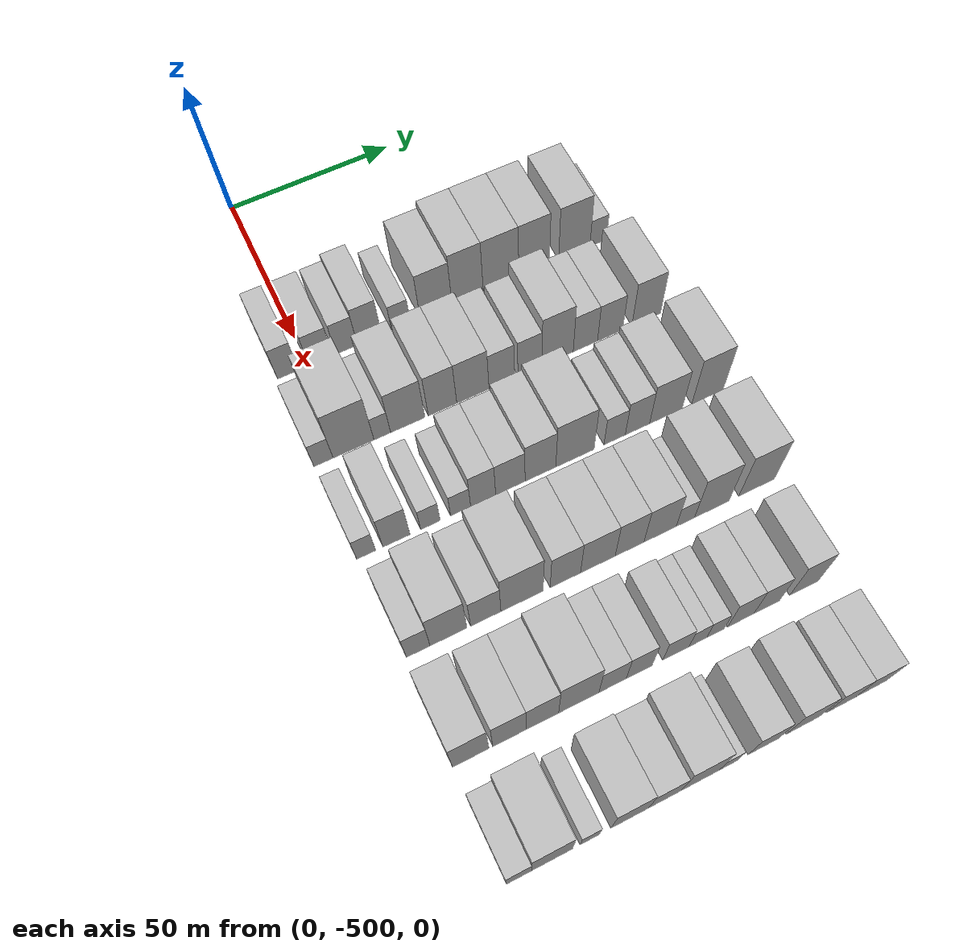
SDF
<sdf version="1.6">
 <world name="default">
  <model name="building_1">
   <static>1</static>
   <pose>50.0000 -505.8963 0 0.000000 0.000000 0.000000</pose>
   <link name="link">
    <pose>0 0 7.50 0 0 0</pose>
    <collision name="collision"><geometry><box><size>20.0000 6.2074 15.0000</size></box></geometry></collision>
    <visual name="visual">
     <cast_shadows>0</cast_shadows>
     <geometry><box><size>20.0000 6.2074 15.0000</size></box></geometry>
     <material>
      <script>
       <uri>model://HANNAS_wall/materials/scripts</uri>
       <uri>model://HANNAS_wall/materials/textures</uri>
       <name>vrc/HANNAS_wall</name>
      </script>
     </material>
    </visual>
   </link>
  </model>
  <model name="building_2">
   <static>1</static>
   <pose>50.0000 -496.2147 0 0.000000 0.000000 0.000000</pose>
   <link name="link">
    <pose>0 0 7.50 0 0 0</pose>
    <collision name="collision"><geometry><box><size>20.0000 7.1558 15.0000</size></box></geometry></collision>
    <visual name="visual">
     <cast_shadows>0</cast_shadows>
     <geometry><box><size>20.0000 7.1558 15.0000</size></box></geometry>
     <material>
      <script>
       <uri>model://HANNAS_wall/materials/scripts</uri>
       <uri>model://HANNAS_wall/materials/textures</uri>
       <name>vrc/HANNAS_wall</name>
      </script>
     </material>
    </visual>
   </link>
  </model>
  <model name="building_3">
   <static>1</static>
   <pose>50.0000 -488.3676 0 0.000000 0.000000 0.000000</pose>
   <link name="link">
    <pose>0 0 7.50 0 0 0</pose>
    <collision name="collision"><geometry><box><size>20.0000 6.5385 15.0000</size></box></geometry></collision>
    <visual name="visual">
     <cast_shadows>0</cast_shadows>
     <geometry><box><size>20.0000 6.5385 15.0000</size></box></geometry>
     <material>
      <script>
       <uri>model://HANNAS_wall/materials/scripts</uri>
       <uri>model://HANNAS_wall/materials/textures</uri>
       <name>vrc/HANNAS_wall</name>
      </script>
     </material>
    </visual>
   </link>
  </model>
  <model name="building_4">
   <static>1</static>
   <pose>50.0000 -481.3942 0 0.000000 0.000000 0.000000</pose>
   <link name="link">
    <pose>0 0 9.00 0 0 0</pose>
    <collision name="collision"><geometry><box><size>20.0000 7.4084 18.0000</size></box></geometry></collision>
    <visual name="visual">
     <cast_shadows>0</cast_shadows>
     <geometry><box><size>20.0000 7.4084 18.0000</size></box></geometry>
     <material>
      <script>
       <uri>model://HANNAS_wall/materials/scripts</uri>
       <uri>model://HANNAS_wall/materials/textures</uri>
       <name>vrc/HANNAS_wall</name>
      </script>
     </material>
    </visual>
   </link>
  </model>
  <model name="building_5">
   <static>1</static>
   <pose>50.0000 -471.7750 0 0.000000 0.000000 0.000000</pose>
   <link name="link">
    <pose>0 0 6.00 0 0 0</pose>
    <collision name="collision"><geometry><box><size>20.0000 5.8300 12.0000</size></box></geometry></collision>
    <visual name="visual">
     <cast_shadows>0</cast_shadows>
     <geometry><box><size>20.0000 5.8300 12.0000</size></box></geometry>
     <material>
      <script>
       <uri>model://HANNAS_wall/materials/scripts</uri>
       <uri>model://HANNAS_wall/materials/textures</uri>
       <name>vrc/HANNAS_wall</name>
      </script>
     </material>
    </visual>
   </link>
  </model>
  <model name="building_6">
   <static>1</static>
   <pose>50.0000 -460.8739 0 0.000000 0.000000 0.000000</pose>
   <link name="link">
    <pose>0 0 10.50 0 0 0</pose>
    <collision name="collision"><geometry><box><size>20.0000 9.9722 21.0000</size></box></geometry></collision>
    <visual name="visual">
     <cast_shadows>0</cast_shadows>
     <geometry><box><size>20.0000 9.9722 21.0000</size></box></geometry>
     <material>
      <script>
       <uri>model://HANNAS_wall/materials/scripts</uri>
       <uri>model://HANNAS_wall/materials/textures</uri>
       <name>vrc/HANNAS_wall</name>
      </script>
     </material>
    </visual>
   </link>
  </model>
  <model name="building_7">
   <static>1</static>
   <pose>50.0000 -450.9703 0 0.000000 0.000000 0.000000</pose>
   <link name="link">
    <pose>0 0 12.00 0 0 0</pose>
    <collision name="collision"><geometry><box><size>20.0000 9.8350 24.0000</size></box></geometry></collision>
    <visual name="visual">
     <cast_shadows>0</cast_shadows>
     <geometry><box><size>20.0000 9.8350 24.0000</size></box></geometry>
     <material>
      <script>
       <uri>model://HANNAS_wall/materials/scripts</uri>
       <uri>model://HANNAS_wall/materials/textures</uri>
       <name>vrc/HANNAS_wall</name>
      </script>
     </material>
    </visual>
   </link>
  </model>
  <model name="building_8">
   <static>1</static>
   <pose>50.0000 -440.3753 0 0.000000 0.000000 0.000000</pose>
   <link name="link">
    <pose>0 0 12.00 0 0 0</pose>
    <collision name="collision"><geometry><box><size>20.0000 11.3550 24.0000</size></box></geometry></collision>
    <visual name="visual">
     <cast_shadows>0</cast_shadows>
     <geometry><box><size>20.0000 11.3550 24.0000</size></box></geometry>
     <material>
      <script>
       <uri>model://HANNAS_wall/materials/scripts</uri>
       <uri>model://HANNAS_wall/materials/textures</uri>
       <name>vrc/HANNAS_wall</name>
      </script>
     </material>
    </visual>
   </link>
  </model>
  <model name="building_9">
   <static>1</static>
   <pose>50.0000 -429.7503 0 0.000000 0.000000 0.000000</pose>
   <link name="link">
    <pose>0 0 12.00 0 0 0</pose>
    <collision name="collision"><geometry><box><size>20.0000 9.8951 24.0000</size></box></geometry></collision>
    <visual name="visual">
     <cast_shadows>0</cast_shadows>
     <geometry><box><size>20.0000 9.8951 24.0000</size></box></geometry>
     <material>
      <script>
       <uri>model://HANNAS_wall/materials/scripts</uri>
       <uri>model://HANNAS_wall/materials/textures</uri>
       <name>vrc/HANNAS_wall</name>
      </script>
     </material>
    </visual>
   </link>
  </model>
  <model name="building_10">
   <static>1</static>
   <pose>50.0000 -416.6631 0 0.000000 0.000000 0.000000</pose>
   <link name="link">
    <pose>0 0 12.00 0 0 0</pose>
    <collision name="collision"><geometry><box><size>20.0000 10.2793 24.0000</size></box></geometry></collision>
    <visual name="visual">
     <cast_shadows>0</cast_shadows>
     <geometry><box><size>20.0000 10.2793 24.0000</size></box></geometry>
     <material>
      <script>
       <uri>model://HANNAS_wall/materials/scripts</uri>
       <uri>model://HANNAS_wall/materials/textures</uri>
       <name>vrc/HANNAS_wall</name>
      </script>
     </material>
    </visual>
   </link>
  </model>
  <model name="building_11">
   <static>1</static>
   <pose>50.0000 -408.7745 0 0.000000 0.000000 0.000000</pose>
   <link name="link">
    <pose>0 0 6.00 0 0 0</pose>
    <collision name="collision"><geometry><box><size>20.0000 5.4980 12.0000</size></box></geometry></collision>
    <visual name="visual">
     <cast_shadows>0</cast_shadows>
     <geometry><box><size>20.0000 5.4980 12.0000</size></box></geometry>
     <material>
      <script>
       <uri>model://HANNAS_wall/materials/scripts</uri>
       <uri>model://HANNAS_wall/materials/textures</uri>
       <name>vrc/HANNAS_wall</name>
      </script>
     </material>
    </visual>
   </link>
  </model>
  <model name="building_118">
   <static>1</static>
   <pose>79.0000 -507.2299 0 0.000000 0.000000 0.000000</pose>
   <link name="link">
    <pose>0 0 6.00 0 0 0</pose>
    <collision name="collision"><geometry><box><size>20.0000 5.5402 12.0000</size></box></geometry></collision>
    <visual name="visual">
     <cast_shadows>0</cast_shadows>
     <geometry><box><size>20.0000 5.5402 12.0000</size></box></geometry>
     <material>
      <script>
       <uri>model://HANNAS_wall/materials/scripts</uri>
       <uri>model://HANNAS_wall/materials/textures</uri>
       <name>vrc/HANNAS_wall</name>
      </script>
     </material>
    </visual>
   </link>
  </model>
  <model name="building_119">
   <static>1</static>
   <pose>79.0000 -498.5365 0 0.000000 0.000000 0.000000</pose>
   <link name="link">
    <pose>0 0 12.00 0 0 0</pose>
    <collision name="collision"><geometry><box><size>20.0000 11.8465 24.0000</size></box></geometry></collision>
    <visual name="visual">
     <cast_shadows>0</cast_shadows>
     <geometry><box><size>20.0000 11.8465 24.0000</size></box></geometry>
     <material>
      <script>
       <uri>model://HANNAS_wall/materials/scripts</uri>
       <uri>model://HANNAS_wall/materials/textures</uri>
       <name>vrc/HANNAS_wall</name>
      </script>
     </material>
    </visual>
   </link>
  </model>
  <model name="building_120">
   <static>1</static>
   <pose>79.0000 -490.1682 0 0.000000 0.000000 0.000000</pose>
   <link name="link">
    <pose>0 0 6.00 0 0 0</pose>
    <collision name="collision"><geometry><box><size>20.0000 4.8902 12.0000</size></box></geometry></collision>
    <visual name="visual">
     <cast_shadows>0</cast_shadows>
     <geometry><box><size>20.0000 4.8902 12.0000</size></box></geometry>
     <material>
      <script>
       <uri>model://HANNAS_wall/materials/scripts</uri>
       <uri>model://HANNAS_wall/materials/textures</uri>
       <name>vrc/HANNAS_wall</name>
      </script>
     </material>
    </visual>
   </link>
  </model>
  <model name="building_121">
   <static>1</static>
   <pose>79.0000 -482.6408 0 0.000000 0.000000 0.000000</pose>
   <link name="link">
    <pose>0 0 10.50 0 0 0</pose>
    <collision name="collision"><geometry><box><size>20.0000 10.1646 21.0000</size></box></geometry></collision>
    <visual name="visual">
     <cast_shadows>0</cast_shadows>
     <geometry><box><size>20.0000 10.1646 21.0000</size></box></geometry>
     <material>
      <script>
       <uri>model://HANNAS_wall/materials/scripts</uri>
       <uri>model://HANNAS_wall/materials/textures</uri>
       <name>vrc/HANNAS_wall</name>
      </script>
     </material>
    </visual>
   </link>
  </model>
  <model name="building_122">
   <static>1</static>
   <pose>79.0000 -472.2921 0 0.000000 0.000000 0.000000</pose>
   <link name="link">
    <pose>0 0 10.50 0 0 0</pose>
    <collision name="collision"><geometry><box><size>20.0000 8.5328 21.0000</size></box></geometry></collision>
    <visual name="visual">
     <cast_shadows>0</cast_shadows>
     <geometry><box><size>20.0000 8.5328 21.0000</size></box></geometry>
     <material>
      <script>
       <uri>model://HANNAS_wall/materials/scripts</uri>
       <uri>model://HANNAS_wall/materials/textures</uri>
       <name>vrc/HANNAS_wall</name>
      </script>
     </material>
    </visual>
   </link>
  </model>
  <model name="building_123">
   <static>1</static>
   <pose>79.0000 -463.1370 0 0.000000 0.000000 0.000000</pose>
   <link name="link">
    <pose>0 0 10.50 0 0 0</pose>
    <collision name="collision"><geometry><box><size>20.0000 9.7774 21.0000</size></box></geometry></collision>
    <visual name="visual">
     <cast_shadows>0</cast_shadows>
     <geometry><box><size>20.0000 9.7774 21.0000</size></box></geometry>
     <material>
      <script>
       <uri>model://HANNAS_wall/materials/scripts</uri>
       <uri>model://HANNAS_wall/materials/textures</uri>
       <name>vrc/HANNAS_wall</name>
      </script>
     </material>
    </visual>
   </link>
  </model>
  <model name="building_124">
   <static>1</static>
   <pose>79.0000 -454.3290 0 0.000000 0.000000 0.000000</pose>
   <link name="link">
    <pose>0 0 9.00 0 0 0</pose>
    <collision name="collision"><geometry><box><size>20.0000 7.8386 18.0000</size></box></geometry></collision>
    <visual name="visual">
     <cast_shadows>0</cast_shadows>
     <geometry><box><size>20.0000 7.8386 18.0000</size></box></geometry>
     <material>
      <script>
       <uri>model://HANNAS_wall/materials/scripts</uri>
       <uri>model://HANNAS_wall/materials/textures</uri>
       <name>vrc/HANNAS_wall</name>
      </script>
     </material>
    </visual>
   </link>
  </model>
  <model name="building_125">
   <static>1</static>
   <pose>79.0000 -445.7289 0 0.000000 0.000000 0.000000</pose>
   <link name="link">
    <pose>0 0 9.00 0 0 0</pose>
    <collision name="collision"><geometry><box><size>20.0000 7.3615 18.0000</size></box></geometry></collision>
    <visual name="visual">
     <cast_shadows>0</cast_shadows>
     <geometry><box><size>20.0000 7.3615 18.0000</size></box></geometry>
     <material>
      <script>
       <uri>model://HANNAS_wall/materials/scripts</uri>
       <uri>model://HANNAS_wall/materials/textures</uri>
       <name>vrc/HANNAS_wall</name>
      </script>
     </material>
    </visual>
   </link>
  </model>
  <model name="building_126">
   <static>1</static>
   <pose>79.0000 -437.1277 0 0.000000 0.000000 0.000000</pose>
   <link name="link">
    <pose>0 0 12.00 0 0 0</pose>
    <collision name="collision"><geometry><box><size>20.0000 9.8409 24.0000</size></box></geometry></collision>
    <visual name="visual">
     <cast_shadows>0</cast_shadows>
     <geometry><box><size>20.0000 9.8409 24.0000</size></box></geometry>
     <material>
      <script>
       <uri>model://HANNAS_wall/materials/scripts</uri>
       <uri>model://HANNAS_wall/materials/textures</uri>
       <name>vrc/HANNAS_wall</name>
      </script>
     </material>
    </visual>
   </link>
  </model>
  <model name="building_127">
   <static>1</static>
   <pose>79.0000 -428.3632 0 0.000000 0.000000 0.000000</pose>
   <link name="link">
    <pose>0 0 9.00 0 0 0</pose>
    <collision name="collision"><geometry><box><size>20.0000 7.6882 18.0000</size></box></geometry></collision>
    <visual name="visual">
     <cast_shadows>0</cast_shadows>
     <geometry><box><size>20.0000 7.6882 18.0000</size></box></geometry>
     <material>
      <script>
       <uri>model://HANNAS_wall/materials/scripts</uri>
       <uri>model://HANNAS_wall/materials/textures</uri>
       <name>vrc/HANNAS_wall</name>
      </script>
     </material>
    </visual>
   </link>
  </model>
  <model name="building_128">
   <static>1</static>
   <pose>79.0000 -420.5213 0 0.000000 0.000000 0.000000</pose>
   <link name="link">
    <pose>0 0 9.00 0 0 0</pose>
    <collision name="collision"><geometry><box><size>20.0000 7.9956 18.0000</size></box></geometry></collision>
    <visual name="visual">
     <cast_shadows>0</cast_shadows>
     <geometry><box><size>20.0000 7.9956 18.0000</size></box></geometry>
     <material>
      <script>
       <uri>model://HANNAS_wall/materials/scripts</uri>
       <uri>model://HANNAS_wall/materials/textures</uri>
       <name>vrc/HANNAS_wall</name>
      </script>
     </material>
    </visual>
   </link>
  </model>
  <model name="building_129">
   <static>1</static>
   <pose>79.0000 -408.8965 0 0.000000 0.000000 0.000000</pose>
   <link name="link">
    <pose>0 0 10.50 0 0 0</pose>
    <collision name="collision"><geometry><box><size>20.0000 9.2539 21.0000</size></box></geometry></collision>
    <visual name="visual">
     <cast_shadows>0</cast_shadows>
     <geometry><box><size>20.0000 9.2539 21.0000</size></box></geometry>
     <material>
      <script>
       <uri>model://HANNAS_wall/materials/scripts</uri>
       <uri>model://HANNAS_wall/materials/textures</uri>
       <name>vrc/HANNAS_wall</name>
      </script>
     </material>
    </visual>
   </link>
  </model>
  <model name="building_231">
   <static>1</static>
   <pose>108.0000 -507.3235 0 0.000000 0.000000 0.000000</pose>
   <link name="link">
    <pose>0 0 6.00 0 0 0</pose>
    <collision name="collision"><geometry><box><size>20.0000 5.3530 12.0000</size></box></geometry></collision>
    <visual name="visual">
     <cast_shadows>0</cast_shadows>
     <geometry><box><size>20.0000 5.3530 12.0000</size></box></geometry>
     <material>
      <script>
       <uri>model://HANNAS_wall/materials/scripts</uri>
       <uri>model://HANNAS_wall/materials/textures</uri>
       <name>vrc/HANNAS_wall</name>
      </script>
     </material>
    </visual>
   </link>
  </model>
  <model name="building_232">
   <static>1</static>
   <pose>108.0000 -498.8222 0 0.000000 0.000000 0.000000</pose>
   <link name="link">
    <pose>0 0 9.00 0 0 0</pose>
    <collision name="collision"><geometry><box><size>20.0000 7.6496 18.0000</size></box></geometry></collision>
    <visual name="visual">
     <cast_shadows>0</cast_shadows>
     <geometry><box><size>20.0000 7.6496 18.0000</size></box></geometry>
     <material>
      <script>
       <uri>model://HANNAS_wall/materials/scripts</uri>
       <uri>model://HANNAS_wall/materials/textures</uri>
       <name>vrc/HANNAS_wall</name>
      </script>
     </material>
    </visual>
   </link>
  </model>
  <model name="building_233">
   <static>1</static>
   <pose>108.0000 -489.2137 0 0.000000 0.000000 0.000000</pose>
   <link name="link">
    <pose>0 0 6.00 0 0 0</pose>
    <collision name="collision"><geometry><box><size>20.0000 5.5675 12.0000</size></box></geometry></collision>
    <visual name="visual">
     <cast_shadows>0</cast_shadows>
     <geometry><box><size>20.0000 5.5675 12.0000</size></box></geometry>
     <material>
      <script>
       <uri>model://HANNAS_wall/materials/scripts</uri>
       <uri>model://HANNAS_wall/materials/textures</uri>
       <name>vrc/HANNAS_wall</name>
      </script>
     </material>
    </visual>
   </link>
  </model>
  <model name="building_234">
   <static>1</static>
   <pose>108.0000 -480.5466 0 0.000000 0.000000 0.000000</pose>
   <link name="link">
    <pose>0 0 6.00 0 0 0</pose>
    <collision name="collision"><geometry><box><size>20.0000 5.7665 12.0000</size></box></geometry></collision>
    <visual name="visual">
     <cast_shadows>0</cast_shadows>
     <geometry><box><size>20.0000 5.7665 12.0000</size></box></geometry>
     <material>
      <script>
       <uri>model://HANNAS_wall/materials/scripts</uri>
       <uri>model://HANNAS_wall/materials/textures</uri>
       <name>vrc/HANNAS_wall</name>
      </script>
     </material>
    </visual>
   </link>
  </model>
  <model name="building_235">
   <static>1</static>
   <pose>108.0000 -474.0168 0 0.000000 0.000000 0.000000</pose>
   <link name="link">
    <pose>0 0 9.00 0 0 0</pose>
    <collision name="collision"><geometry><box><size>20.0000 7.2930 18.0000</size></box></geometry></collision>
    <visual name="visual">
     <cast_shadows>0</cast_shadows>
     <geometry><box><size>20.0000 7.2930 18.0000</size></box></geometry>
     <material>
      <script>
       <uri>model://HANNAS_wall/materials/scripts</uri>
       <uri>model://HANNAS_wall/materials/textures</uri>
       <name>vrc/HANNAS_wall</name>
      </script>
     </material>
    </visual>
   </link>
  </model>
  <model name="building_236">
   <static>1</static>
   <pose>108.0000 -466.0576 0 0.000000 0.000000 0.000000</pose>
   <link name="link">
    <pose>0 0 9.00 0 0 0</pose>
    <collision name="collision"><geometry><box><size>20.0000 8.6254 18.0000</size></box></geometry></collision>
    <visual name="visual">
     <cast_shadows>0</cast_shadows>
     <geometry><box><size>20.0000 8.6254 18.0000</size></box></geometry>
     <material>
      <script>
       <uri>model://HANNAS_wall/materials/scripts</uri>
       <uri>model://HANNAS_wall/materials/textures</uri>
       <name>vrc/HANNAS_wall</name>
      </script>
     </material>
    </visual>
   </link>
  </model>
  <model name="building_237">
   <static>1</static>
   <pose>108.0000 -457.1804 0 0.000000 0.000000 0.000000</pose>
   <link name="link">
    <pose>0 0 10.50 0 0 0</pose>
    <collision name="collision"><geometry><box><size>20.0000 9.1292 21.0000</size></box></geometry></collision>
    <visual name="visual">
     <cast_shadows>0</cast_shadows>
     <geometry><box><size>20.0000 9.1292 21.0000</size></box></geometry>
     <material>
      <script>
       <uri>model://HANNAS_wall/materials/scripts</uri>
       <uri>model://HANNAS_wall/materials/textures</uri>
       <name>vrc/HANNAS_wall</name>
      </script>
     </material>
    </visual>
   </link>
  </model>
  <model name="building_238">
   <static>1</static>
   <pose>108.0000 -446.8423 0 0.000000 0.000000 0.000000</pose>
   <link name="link">
    <pose>0 0 12.00 0 0 0</pose>
    <collision name="collision"><geometry><box><size>20.0000 11.5470 24.0000</size></box></geometry></collision>
    <visual name="visual">
     <cast_shadows>0</cast_shadows>
     <geometry><box><size>20.0000 11.5470 24.0000</size></box></geometry>
     <material>
      <script>
       <uri>model://HANNAS_wall/materials/scripts</uri>
       <uri>model://HANNAS_wall/materials/textures</uri>
       <name>vrc/HANNAS_wall</name>
      </script>
     </material>
    </visual>
   </link>
  </model>
  <model name="building_239">
   <static>1</static>
   <pose>108.0000 -434.8167 0 0.000000 0.000000 0.000000</pose>
   <link name="link">
    <pose>0 0 7.50 0 0 0</pose>
    <collision name="collision"><geometry><box><size>20.0000 6.5040 15.0000</size></box></geometry></collision>
    <visual name="visual">
     <cast_shadows>0</cast_shadows>
     <geometry><box><size>20.0000 6.5040 15.0000</size></box></geometry>
     <material>
      <script>
       <uri>model://HANNAS_wall/materials/scripts</uri>
       <uri>model://HANNAS_wall/materials/textures</uri>
       <name>vrc/HANNAS_wall</name>
      </script>
     </material>
    </visual>
   </link>
  </model>
  <model name="building_240">
   <static>1</static>
   <pose>108.0000 -427.8148 0 0.000000 0.000000 0.000000</pose>
   <link name="link">
    <pose>0 0 9.00 0 0 0</pose>
    <collision name="collision"><geometry><box><size>20.0000 7.4998 18.0000</size></box></geometry></collision>
    <visual name="visual">
     <cast_shadows>0</cast_shadows>
     <geometry><box><size>20.0000 7.4998 18.0000</size></box></geometry>
     <material>
      <script>
       <uri>model://HANNAS_wall/materials/scripts</uri>
       <uri>model://HANNAS_wall/materials/textures</uri>
       <name>vrc/HANNAS_wall</name>
      </script>
     </material>
    </visual>
   </link>
  </model>
  <model name="building_241">
   <static>1</static>
   <pose>108.0000 -418.9855 0 0.000000 0.000000 0.000000</pose>
   <link name="link">
    <pose>0 0 10.50 0 0 0</pose>
    <collision name="collision"><geometry><box><size>20.0000 10.1589 21.0000</size></box></geometry></collision>
    <visual name="visual">
     <cast_shadows>0</cast_shadows>
     <geometry><box><size>20.0000 10.1589 21.0000</size></box></geometry>
     <material>
      <script>
       <uri>model://HANNAS_wall/materials/scripts</uri>
       <uri>model://HANNAS_wall/materials/textures</uri>
       <name>vrc/HANNAS_wall</name>
      </script>
     </material>
    </visual>
   </link>
  </model>
  <model name="building_242">
   <static>1</static>
   <pose>108.0000 -405.9347 0 0.000000 0.000000 0.000000</pose>
   <link name="link">
    <pose>0 0 12.00 0 0 0</pose>
    <collision name="collision"><geometry><box><size>20.0000 9.9427 24.0000</size></box></geometry></collision>
    <visual name="visual">
     <cast_shadows>0</cast_shadows>
     <geometry><box><size>20.0000 9.9427 24.0000</size></box></geometry>
     <material>
      <script>
       <uri>model://HANNAS_wall/materials/scripts</uri>
       <uri>model://HANNAS_wall/materials/textures</uri>
       <name>vrc/HANNAS_wall</name>
      </script>
     </material>
    </visual>
   </link>
  </model>
  <model name="building_349">
   <static>1</static>
   <pose>137.0000 -505.7888 0 0.000000 0.000000 0.000000</pose>
   <link name="link">
    <pose>0 0 7.50 0 0 0</pose>
    <collision name="collision"><geometry><box><size>20.0000 6.4224 15.0000</size></box></geometry></collision>
    <visual name="visual">
     <cast_shadows>0</cast_shadows>
     <geometry><box><size>20.0000 6.4224 15.0000</size></box></geometry>
     <material>
      <script>
       <uri>model://HANNAS_wall/materials/scripts</uri>
       <uri>model://HANNAS_wall/materials/textures</uri>
       <name>vrc/HANNAS_wall</name>
      </script>
     </material>
    </visual>
   </link>
  </model>
  <model name="building_350">
   <static>1</static>
   <pose>137.0000 -497.5162 0 0.000000 0.000000 0.000000</pose>
   <link name="link">
    <pose>0 0 10.50 0 0 0</pose>
    <collision name="collision"><geometry><box><size>20.0000 10.1228 21.0000</size></box></geometry></collision>
    <visual name="visual">
     <cast_shadows>0</cast_shadows>
     <geometry><box><size>20.0000 10.1228 21.0000</size></box></geometry>
     <material>
      <script>
       <uri>model://HANNAS_wall/materials/scripts</uri>
       <uri>model://HANNAS_wall/materials/textures</uri>
       <name>vrc/HANNAS_wall</name>
      </script>
     </material>
    </visual>
   </link>
  </model>
  <model name="building_351">
   <static>1</static>
   <pose>137.0000 -487.2466 0 0.000000 0.000000 0.000000</pose>
   <link name="link">
    <pose>0 0 9.00 0 0 0</pose>
    <collision name="collision"><geometry><box><size>20.0000 8.4164 18.0000</size></box></geometry></collision>
    <visual name="visual">
     <cast_shadows>0</cast_shadows>
     <geometry><box><size>20.0000 8.4164 18.0000</size></box></geometry>
     <material>
      <script>
       <uri>model://HANNAS_wall/materials/scripts</uri>
       <uri>model://HANNAS_wall/materials/textures</uri>
       <name>vrc/HANNAS_wall</name>
      </script>
     </material>
    </visual>
   </link>
  </model>
  <model name="building_352">
   <static>1</static>
   <pose>137.0000 -477.0918 0 0.000000 0.000000 0.000000</pose>
   <link name="link">
    <pose>0 0 12.00 0 0 0</pose>
    <collision name="collision"><geometry><box><size>20.0000 11.8934 24.0000</size></box></geometry></collision>
    <visual name="visual">
     <cast_shadows>0</cast_shadows>
     <geometry><box><size>20.0000 11.8934 24.0000</size></box></geometry>
     <material>
      <script>
       <uri>model://HANNAS_wall/materials/scripts</uri>
       <uri>model://HANNAS_wall/materials/textures</uri>
       <name>vrc/HANNAS_wall</name>
      </script>
     </material>
    </visual>
   </link>
  </model>
  <model name="building_353">
   <static>1</static>
   <pose>137.0000 -464.8039 0 0.000000 0.000000 0.000000</pose>
   <link name="link">
    <pose>0 0 10.50 0 0 0</pose>
    <collision name="collision"><geometry><box><size>20.0000 8.6824 21.0000</size></box></geometry></collision>
    <visual name="visual">
     <cast_shadows>0</cast_shadows>
     <geometry><box><size>20.0000 8.6824 21.0000</size></box></geometry>
     <material>
      <script>
       <uri>model://HANNAS_wall/materials/scripts</uri>
       <uri>model://HANNAS_wall/materials/textures</uri>
       <name>vrc/HANNAS_wall</name>
      </script>
     </material>
    </visual>
   </link>
  </model>
  <model name="building_354">
   <static>1</static>
   <pose>137.0000 -455.4356 0 0.000000 0.000000 0.000000</pose>
   <link name="link">
    <pose>0 0 10.50 0 0 0</pose>
    <collision name="collision"><geometry><box><size>20.0000 10.0542 21.0000</size></box></geometry></collision>
    <visual name="visual">
     <cast_shadows>0</cast_shadows>
     <geometry><box><size>20.0000 10.0542 21.0000</size></box></geometry>
     <material>
      <script>
       <uri>model://HANNAS_wall/materials/scripts</uri>
       <uri>model://HANNAS_wall/materials/textures</uri>
       <name>vrc/HANNAS_wall</name>
      </script>
     </material>
    </visual>
   </link>
  </model>
  <model name="building_355">
   <static>1</static>
   <pose>137.0000 -446.1889 0 0.000000 0.000000 0.000000</pose>
   <link name="link">
    <pose>0 0 10.50 0 0 0</pose>
    <collision name="collision"><geometry><box><size>20.0000 8.4391 21.0000</size></box></geometry></collision>
    <visual name="visual">
     <cast_shadows>0</cast_shadows>
     <geometry><box><size>20.0000 8.4391 21.0000</size></box></geometry>
     <material>
      <script>
       <uri>model://HANNAS_wall/materials/scripts</uri>
       <uri>model://HANNAS_wall/materials/textures</uri>
       <name>vrc/HANNAS_wall</name>
      </script>
     </material>
    </visual>
   </link>
  </model>
  <model name="building_356">
   <static>1</static>
   <pose>137.0000 -437.1834 0 0.000000 0.000000 0.000000</pose>
   <link name="link">
    <pose>0 0 10.50 0 0 0</pose>
    <collision name="collision"><geometry><box><size>20.0000 9.5718 21.0000</size></box></geometry></collision>
    <visual name="visual">
     <cast_shadows>0</cast_shadows>
     <geometry><box><size>20.0000 9.5718 21.0000</size></box></geometry>
     <material>
      <script>
       <uri>model://HANNAS_wall/materials/scripts</uri>
       <uri>model://HANNAS_wall/materials/textures</uri>
       <name>vrc/HANNAS_wall</name>
      </script>
     </material>
    </visual>
   </link>
  </model>
  <model name="building_357">
   <static>1</static>
   <pose>137.0000 -429.6460 0 0.000000 0.000000 0.000000</pose>
   <link name="link">
    <pose>0 0 6.00 0 0 0</pose>
    <collision name="collision"><geometry><box><size>20.0000 5.5029 12.0000</size></box></geometry></collision>
    <visual name="visual">
     <cast_shadows>0</cast_shadows>
     <geometry><box><size>20.0000 5.5029 12.0000</size></box></geometry>
     <material>
      <script>
       <uri>model://HANNAS_wall/materials/scripts</uri>
       <uri>model://HANNAS_wall/materials/textures</uri>
       <name>vrc/HANNAS_wall</name>
      </script>
     </material>
    </visual>
   </link>
  </model>
  <model name="building_358">
   <static>1</static>
   <pose>137.0000 -421.6642 0 0.000000 0.000000 0.000000</pose>
   <link name="link">
    <pose>0 0 12.00 0 0 0</pose>
    <collision name="collision"><geometry><box><size>20.0000 10.4608 24.0000</size></box></geometry></collision>
    <visual name="visual">
     <cast_shadows>0</cast_shadows>
     <geometry><box><size>20.0000 10.4608 24.0000</size></box></geometry>
     <material>
      <script>
       <uri>model://HANNAS_wall/materials/scripts</uri>
       <uri>model://HANNAS_wall/materials/textures</uri>
       <name>vrc/HANNAS_wall</name>
      </script>
     </material>
    </visual>
   </link>
  </model>
  <model name="building_359">
   <static>1</static>
   <pose>137.0000 -407.9677 0 0.000000 0.000000 0.000000</pose>
   <link name="link">
    <pose>0 0 12.00 0 0 0</pose>
    <collision name="collision"><geometry><box><size>20.0000 10.9324 24.0000</size></box></geometry></collision>
    <visual name="visual">
     <cast_shadows>0</cast_shadows>
     <geometry><box><size>20.0000 10.9324 24.0000</size></box></geometry>
     <material>
      <script>
       <uri>model://HANNAS_wall/materials/scripts</uri>
       <uri>model://HANNAS_wall/materials/textures</uri>
       <name>vrc/HANNAS_wall</name>
      </script>
     </material>
    </visual>
   </link>
  </model>
  <model name="building_459">
   <static>1</static>
   <pose>166.0000 -505.1959 0 0.000000 0.000000 0.000000</pose>
   <link name="link">
    <pose>0 0 10.50 0 0 0</pose>
    <collision name="collision"><geometry><box><size>20.0000 9.6081 21.0000</size></box></geometry></collision>
    <visual name="visual">
     <cast_shadows>0</cast_shadows>
     <geometry><box><size>20.0000 9.6081 21.0000</size></box></geometry>
     <material>
      <script>
       <uri>model://HANNAS_wall/materials/scripts</uri>
       <uri>model://HANNAS_wall/materials/textures</uri>
       <name>vrc/HANNAS_wall</name>
      </script>
     </material>
    </visual>
   </link>
  </model>
  <model name="building_460">
   <static>1</static>
   <pose>166.0000 -494.9447 0 0.000000 0.000000 0.000000</pose>
   <link name="link">
    <pose>0 0 10.50 0 0 0</pose>
    <collision name="collision"><geometry><box><size>20.0000 8.8944 21.0000</size></box></geometry></collision>
    <visual name="visual">
     <cast_shadows>0</cast_shadows>
     <geometry><box><size>20.0000 8.8944 21.0000</size></box></geometry>
     <material>
      <script>
       <uri>model://HANNAS_wall/materials/scripts</uri>
       <uri>model://HANNAS_wall/materials/textures</uri>
       <name>vrc/HANNAS_wall</name>
      </script>
     </material>
    </visual>
   </link>
  </model>
  <model name="building_461">
   <static>1</static>
   <pose>166.0000 -486.1103 0 0.000000 0.000000 0.000000</pose>
   <link name="link">
    <pose>0 0 10.50 0 0 0</pose>
    <collision name="collision"><geometry><box><size>20.0000 8.7744 21.0000</size></box></geometry></collision>
    <visual name="visual">
     <cast_shadows>0</cast_shadows>
     <geometry><box><size>20.0000 8.7744 21.0000</size></box></geometry>
     <material>
      <script>
       <uri>model://HANNAS_wall/materials/scripts</uri>
       <uri>model://HANNAS_wall/materials/textures</uri>
       <name>vrc/HANNAS_wall</name>
      </script>
     </material>
    </visual>
   </link>
  </model>
  <model name="building_462">
   <static>1</static>
   <pose>166.0000 -476.2037 0 0.000000 0.000000 0.000000</pose>
   <link name="link">
    <pose>0 0 12.00 0 0 0</pose>
    <collision name="collision"><geometry><box><size>20.0000 11.0388 24.0000</size></box></geometry></collision>
    <visual name="visual">
     <cast_shadows>0</cast_shadows>
     <geometry><box><size>20.0000 11.0388 24.0000</size></box></geometry>
     <material>
      <script>
       <uri>model://HANNAS_wall/materials/scripts</uri>
       <uri>model://HANNAS_wall/materials/textures</uri>
       <name>vrc/HANNAS_wall</name>
      </script>
     </material>
    </visual>
   </link>
  </model>
  <model name="building_463">
   <static>1</static>
   <pose>166.0000 -466.8865 0 0.000000 0.000000 0.000000</pose>
   <link name="link">
    <pose>0 0 9.00 0 0 0</pose>
    <collision name="collision"><geometry><box><size>20.0000 7.5955 18.0000</size></box></geometry></collision>
    <visual name="visual">
     <cast_shadows>0</cast_shadows>
     <geometry><box><size>20.0000 7.5955 18.0000</size></box></geometry>
     <material>
      <script>
       <uri>model://HANNAS_wall/materials/scripts</uri>
       <uri>model://HANNAS_wall/materials/textures</uri>
       <name>vrc/HANNAS_wall</name>
      </script>
     </material>
    </visual>
   </link>
  </model>
  <model name="building_464">
   <static>1</static>
   <pose>166.0000 -459.4562 0 0.000000 0.000000 0.000000</pose>
   <link name="link">
    <pose>0 0 9.00 0 0 0</pose>
    <collision name="collision"><geometry><box><size>20.0000 7.2652 18.0000</size></box></geometry></collision>
    <visual name="visual">
     <cast_shadows>0</cast_shadows>
     <geometry><box><size>20.0000 7.2652 18.0000</size></box></geometry>
     <material>
      <script>
       <uri>model://HANNAS_wall/materials/scripts</uri>
       <uri>model://HANNAS_wall/materials/textures</uri>
       <name>vrc/HANNAS_wall</name>
      </script>
     </material>
    </visual>
   </link>
  </model>
  <model name="building_465">
   <static>1</static>
   <pose>166.0000 -449.0753 0 0.000000 0.000000 0.000000</pose>
   <link name="link">
    <pose>0 0 7.50 0 0 0</pose>
    <collision name="collision"><geometry><box><size>20.0000 7.4966 15.0000</size></box></geometry></collision>
    <visual name="visual">
     <cast_shadows>0</cast_shadows>
     <geometry><box><size>20.0000 7.4966 15.0000</size></box></geometry>
     <material>
      <script>
       <uri>model://HANNAS_wall/materials/scripts</uri>
       <uri>model://HANNAS_wall/materials/textures</uri>
       <name>vrc/HANNAS_wall</name>
      </script>
     </material>
    </visual>
   </link>
  </model>
  <model name="building_466">
   <static>1</static>
   <pose>166.0000 -442.8213 0 0.000000 0.000000 0.000000</pose>
   <link name="link">
    <pose>0 0 6.00 0 0 0</pose>
    <collision name="collision"><geometry><box><size>20.0000 5.0114 12.0000</size></box></geometry></collision>
    <visual name="visual">
     <cast_shadows>0</cast_shadows>
     <geometry><box><size>20.0000 5.0114 12.0000</size></box></geometry>
     <material>
      <script>
       <uri>model://HANNAS_wall/materials/scripts</uri>
       <uri>model://HANNAS_wall/materials/textures</uri>
       <name>vrc/HANNAS_wall</name>
      </script>
     </material>
    </visual>
   </link>
  </model>
  <model name="building_467">
   <static>1</static>
   <pose>166.0000 -437.7799 0 0.000000 0.000000 0.000000</pose>
   <link name="link">
    <pose>0 0 6.00 0 0 0</pose>
    <collision name="collision"><geometry><box><size>20.0000 5.0713 12.0000</size></box></geometry></collision>
    <visual name="visual">
     <cast_shadows>0</cast_shadows>
     <geometry><box><size>20.0000 5.0713 12.0000</size></box></geometry>
     <material>
      <script>
       <uri>model://HANNAS_wall/materials/scripts</uri>
       <uri>model://HANNAS_wall/materials/textures</uri>
       <name>vrc/HANNAS_wall</name>
      </script>
     </material>
    </visual>
   </link>
  </model>
  <model name="building_468">
   <static>1</static>
   <pose>166.0000 -430.3973 0 0.000000 0.000000 0.000000</pose>
   <link name="link">
    <pose>0 0 9.00 0 0 0</pose>
    <collision name="collision"><geometry><box><size>20.0000 7.6940 18.0000</size></box></geometry></collision>
    <visual name="visual">
     <cast_shadows>0</cast_shadows>
     <geometry><box><size>20.0000 7.6940 18.0000</size></box></geometry>
     <material>
      <script>
       <uri>model://HANNAS_wall/materials/scripts</uri>
       <uri>model://HANNAS_wall/materials/textures</uri>
       <name>vrc/HANNAS_wall</name>
      </script>
     </material>
    </visual>
   </link>
  </model>
  <model name="building_469">
   <static>1</static>
   <pose>166.0000 -422.7576 0 0.000000 0.000000 0.000000</pose>
   <link name="link">
    <pose>0 0 9.00 0 0 0</pose>
    <collision name="collision"><geometry><box><size>20.0000 7.5853 18.0000</size></box></geometry></collision>
    <visual name="visual">
     <cast_shadows>0</cast_shadows>
     <geometry><box><size>20.0000 7.5853 18.0000</size></box></geometry>
     <material>
      <script>
       <uri>model://HANNAS_wall/materials/scripts</uri>
       <uri>model://HANNAS_wall/materials/textures</uri>
       <name>vrc/HANNAS_wall</name>
      </script>
     </material>
    </visual>
   </link>
  </model>
  <model name="building_470">
   <static>1</static>
   <pose>166.0000 -411.6885 0 0.000000 0.000000 0.000000</pose>
   <link name="link">
    <pose>0 0 10.50 0 0 0</pose>
    <collision name="collision"><geometry><box><size>20.0000 8.5530 21.0000</size></box></geometry></collision>
    <visual name="visual">
     <cast_shadows>0</cast_shadows>
     <geometry><box><size>20.0000 8.5530 21.0000</size></box></geometry>
     <material>
      <script>
       <uri>model://HANNAS_wall/materials/scripts</uri>
       <uri>model://HANNAS_wall/materials/textures</uri>
       <name>vrc/HANNAS_wall</name>
      </script>
     </material>
    </visual>
   </link>
  </model>
  <model name="building_571">
   <static>1</static>
   <pose>195.0000 -506.7974 0 0.000000 0.000000 0.000000</pose>
   <link name="link">
    <pose>0 0 7.50 0 0 0</pose>
    <collision name="collision"><geometry><box><size>20.0000 6.4051 15.0000</size></box></geometry></collision>
    <visual name="visual">
     <cast_shadows>0</cast_shadows>
     <geometry><box><size>20.0000 6.4051 15.0000</size></box></geometry>
     <material>
      <script>
       <uri>model://HANNAS_wall/materials/scripts</uri>
       <uri>model://HANNAS_wall/materials/textures</uri>
       <name>vrc/HANNAS_wall</name>
      </script>
     </material>
    </visual>
   </link>
  </model>
  <model name="building_572">
   <static>1</static>
   <pose>195.0000 -498.3557 0 0.000000 0.000000 0.000000</pose>
   <link name="link">
    <pose>0 0 12.00 0 0 0</pose>
    <collision name="collision"><geometry><box><size>20.0000 10.4783 24.0000</size></box></geometry></collision>
    <visual name="visual">
     <cast_shadows>0</cast_shadows>
     <geometry><box><size>20.0000 10.4783 24.0000</size></box></geometry>
     <material>
      <script>
       <uri>model://HANNAS_wall/materials/scripts</uri>
       <uri>model://HANNAS_wall/materials/textures</uri>
       <name>vrc/HANNAS_wall</name>
      </script>
     </material>
    </visual>
   </link>
  </model>
  <model name="building_573">
   <static>1</static>
   <pose>195.0000 -488.5682 0 0.000000 0.000000 0.000000</pose>
   <link name="link">
    <pose>0 0 6.00 0 0 0</pose>
    <collision name="collision"><geometry><box><size>20.0000 5.0966 12.0000</size></box></geometry></collision>
    <visual name="visual">
     <cast_shadows>0</cast_shadows>
     <geometry><box><size>20.0000 5.0966 12.0000</size></box></geometry>
     <material>
      <script>
       <uri>model://HANNAS_wall/materials/scripts</uri>
       <uri>model://HANNAS_wall/materials/textures</uri>
       <name>vrc/HANNAS_wall</name>
      </script>
     </material>
    </visual>
   </link>
  </model>
  <model name="building_574">
   <static>1</static>
   <pose>195.0000 -478.0395 0 0.000000 0.000000 0.000000</pose>
   <link name="link">
    <pose>0 0 10.50 0 0 0</pose>
    <collision name="collision"><geometry><box><size>20.0000 9.9608 21.0000</size></box></geometry></collision>
    <visual name="visual">
     <cast_shadows>0</cast_shadows>
     <geometry><box><size>20.0000 9.9608 21.0000</size></box></geometry>
     <material>
      <script>
       <uri>model://HANNAS_wall/materials/scripts</uri>
       <uri>model://HANNAS_wall/materials/textures</uri>
       <name>vrc/HANNAS_wall</name>
      </script>
     </material>
    </visual>
   </link>
  </model>
  <model name="building_575">
   <static>1</static>
   <pose>195.0000 -468.7187 0 0.000000 0.000000 0.000000</pose>
   <link name="link">
    <pose>0 0 9.00 0 0 0</pose>
    <collision name="collision"><geometry><box><size>20.0000 8.6809 18.0000</size></box></geometry></collision>
    <visual name="visual">
     <cast_shadows>0</cast_shadows>
     <geometry><box><size>20.0000 8.6809 18.0000</size></box></geometry>
     <material>
      <script>
       <uri>model://HANNAS_wall/materials/scripts</uri>
       <uri>model://HANNAS_wall/materials/textures</uri>
       <name>vrc/HANNAS_wall</name>
      </script>
     </material>
    </visual>
   </link>
  </model>
  <model name="building_576">
   <static>1</static>
   <pose>195.0000 -459.1127 0 0.000000 0.000000 0.000000</pose>
   <link name="link">
    <pose>0 0 12.00 0 0 0</pose>
    <collision name="collision"><geometry><box><size>20.0000 10.5312 24.0000</size></box></geometry></collision>
    <visual name="visual">
     <cast_shadows>0</cast_shadows>
     <geometry><box><size>20.0000 10.5312 24.0000</size></box></geometry>
     <material>
      <script>
       <uri>model://HANNAS_wall/materials/scripts</uri>
       <uri>model://HANNAS_wall/materials/textures</uri>
       <name>vrc/HANNAS_wall</name>
      </script>
     </material>
    </visual>
   </link>
  </model>
  <model name="building_577">
   <static>1</static>
   <pose>195.0000 -451.3772 0 0.000000 0.000000 0.000000</pose>
   <link name="link">
    <pose>0 0 6.00 0 0 0</pose>
    <collision name="collision"><geometry><box><size>20.0000 4.9396 12.0000</size></box></geometry></collision>
    <visual name="visual">
     <cast_shadows>0</cast_shadows>
     <geometry><box><size>20.0000 4.9396 12.0000</size></box></geometry>
     <material>
      <script>
       <uri>model://HANNAS_wall/materials/scripts</uri>
       <uri>model://HANNAS_wall/materials/textures</uri>
       <name>vrc/HANNAS_wall</name>
      </script>
     </material>
    </visual>
   </link>
  </model>
  <model name="building_578">
   <static>1</static>
   <pose>195.0000 -441.5810 0 0.000000 0.000000 0.000000</pose>
   <link name="link">
    <pose>0 0 9.00 0 0 0</pose>
    <collision name="collision"><geometry><box><size>20.0000 8.6529 18.0000</size></box></geometry></collision>
    <visual name="visual">
     <cast_shadows>0</cast_shadows>
     <geometry><box><size>20.0000 8.6529 18.0000</size></box></geometry>
     <material>
      <script>
       <uri>model://HANNAS_wall/materials/scripts</uri>
       <uri>model://HANNAS_wall/materials/textures</uri>
       <name>vrc/HANNAS_wall</name>
      </script>
     </material>
    </visual>
   </link>
  </model>
  <model name="building_579">
   <static>1</static>
   <pose>195.0000 -430.4908 0 0.000000 0.000000 0.000000</pose>
   <link name="link">
    <pose>0 0 10.50 0 0 0</pose>
    <collision name="collision"><geometry><box><size>20.0000 9.5275 21.0000</size></box></geometry></collision>
    <visual name="visual">
     <cast_shadows>0</cast_shadows>
     <geometry><box><size>20.0000 9.5275 21.0000</size></box></geometry>
     <material>
      <script>
       <uri>model://HANNAS_wall/materials/scripts</uri>
       <uri>model://HANNAS_wall/materials/textures</uri>
       <name>vrc/HANNAS_wall</name>
      </script>
     </material>
    </visual>
   </link>
  </model>
  <model name="building_580">
   <static>1</static>
   <pose>195.0000 -419.4970 0 0.000000 0.000000 0.000000</pose>
   <link name="link">
    <pose>0 0 9.00 0 0 0</pose>
    <collision name="collision"><geometry><box><size>20.0000 8.4602 18.0000</size></box></geometry></collision>
    <visual name="visual">
     <cast_shadows>0</cast_shadows>
     <geometry><box><size>20.0000 8.4602 18.0000</size></box></geometry>
     <material>
      <script>
       <uri>model://HANNAS_wall/materials/scripts</uri>
       <uri>model://HANNAS_wall/materials/textures</uri>
       <name>vrc/HANNAS_wall</name>
      </script>
     </material>
    </visual>
   </link>
  </model>
  <model name="building_581">
   <static>1</static>
   <pose>195.0000 -410.8521 0 0.000000 0.000000 0.000000</pose>
   <link name="link">
    <pose>0 0 9.00 0 0 0</pose>
    <collision name="collision"><geometry><box><size>20.0000 8.8296 18.0000</size></box></geometry></collision>
    <visual name="visual">
     <cast_shadows>0</cast_shadows>
     <geometry><box><size>20.0000 8.8296 18.0000</size></box></geometry>
     <material>
      <script>
       <uri>model://HANNAS_wall/materials/scripts</uri>
       <uri>model://HANNAS_wall/materials/textures</uri>
       <name>vrc/HANNAS_wall</name>
      </script>
     </material>
    </visual>
   </link>
  </model>
 </world>
</sdf>
